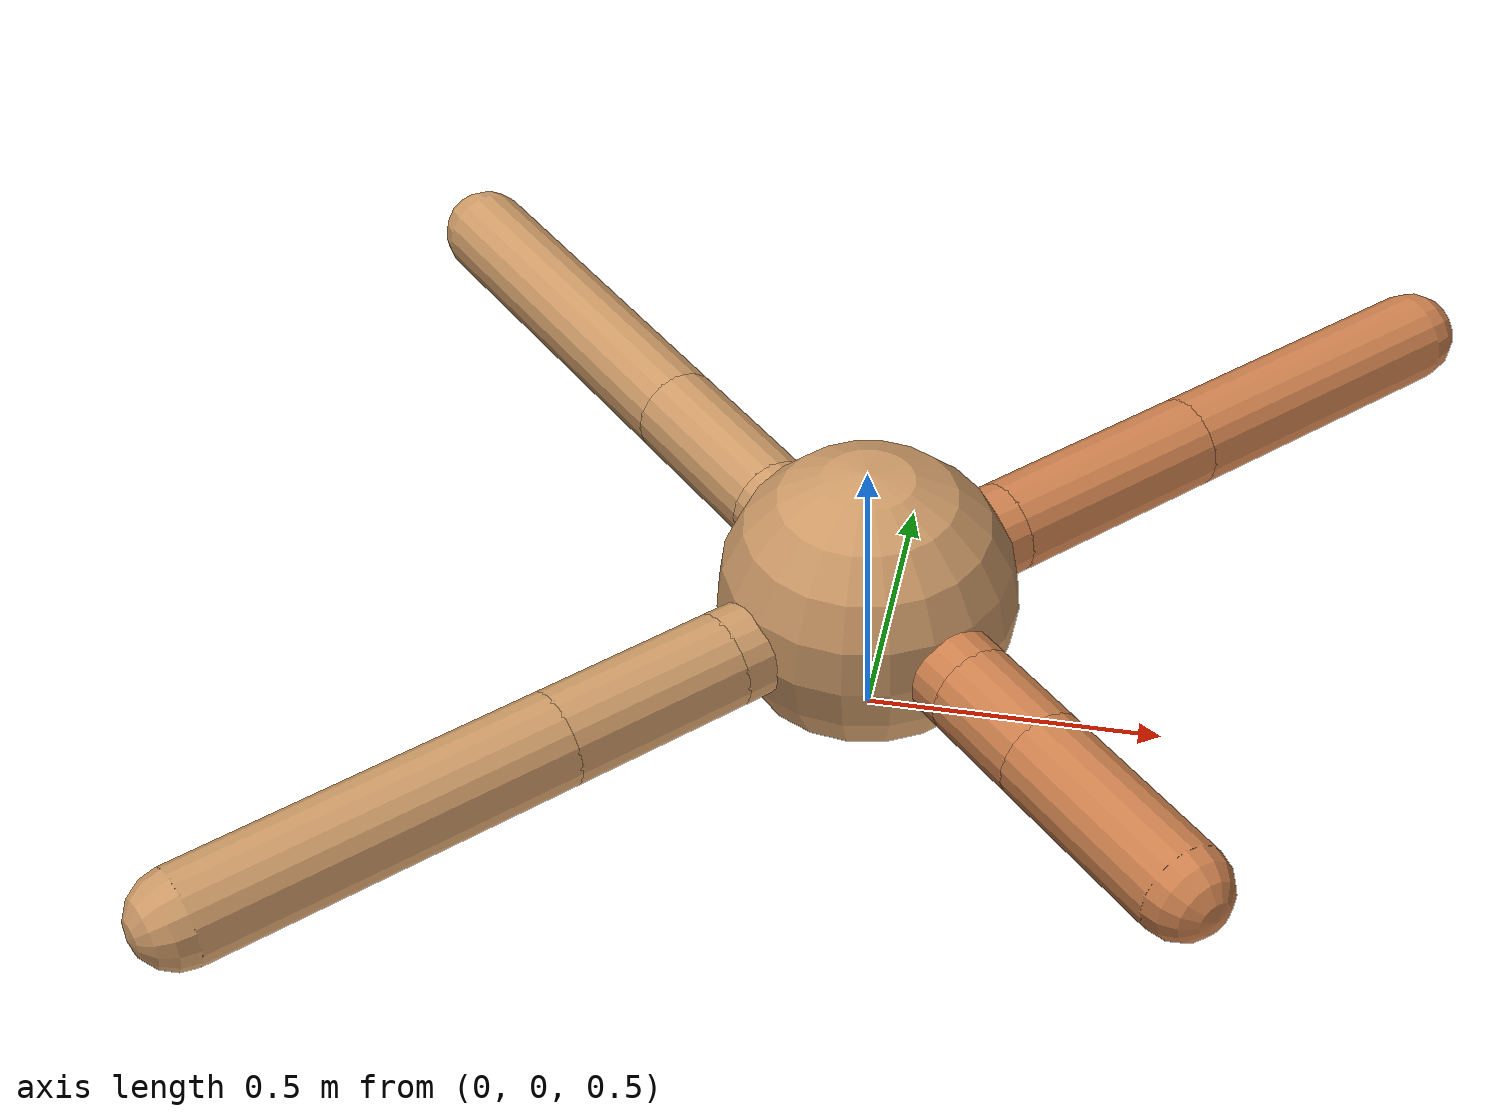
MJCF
<mujoco model="ant">
  <compiler angle="degree" coordinate="local" inertiafromgeom="true" />
  <option integrator="RK4" timestep="0.01" />
  <custom>
    <numeric data="0.0 0.0 0.55 1.0 0.0 0.0 0.0 0.0 1.0 0.0 -1.0 0.0 -1.0 0.0 1.0" name="init_qpos" />
  </custom>
  <default>
    <joint armature="1" damping="1" limited="true" />
    <geom conaffinity="0" condim="3" density="5.0" friction="1.5 0.1 0.1" margin="0.01" rgba="0.8 0.6 0.4 1" />
  </default>
  <worldbody>
    <body name="torso" pos="0 0 0.75">
      <geom name="torso_geom" pos="0 0 0" size="0.25" type="sphere" />

      <body name="front_left_leg" pos="0 0 0">
        <geom fromto="0.0 0.0 0.0 0.2 0.2 0.0" name="aux_1_geom" size="0.08" type="capsule" rgba=".8 .5 .3 1" />
        <body name="aux_1" pos="0.2 0.2 0.0">
          <joint axis="0 0 1" name="hip_1" pos="0.0 0.0 0.0" range="-40 40" type="hinge" />
          <geom fromto="0.0 0.0 0.0 0.28202005290865445 0.28202005290865445 0.0" name="left_leg_geom" size="0.08" type="capsule" rgba=".8 .5 .3 1" />
          <body pos="0.28202005290865445 0.28202005290865445 0.0" name="front_left_foot">
            <joint axis="-1 1 0" name="ankle_1" pos="0.0 0.0 0.0" range="30 100" type="hinge" />
            <geom fromto="0.0 0.0 0.0 0.37817223389114296 0.37817223389114296 0.0" name="left_ankle_geom" size="0.08" type="capsule" rgba=".8 .5 .3 1" />
          </body>
        </body>
      </body>
      <body name="front_right_leg" pos="0 0 0">
        <geom fromto="0.0 0.0 0.0 -0.2 0.2 0.0" name="aux_2_geom" size="0.08" type="capsule" />
        <body name="aux_2" pos="-0.2 0.2 0.0">
          <joint axis="0 0 1" name="hip_2" pos="0.0 0.0 0.0" range="-40 40" type="hinge" />
          <geom fromto="0.0 0.0 0.0 -0.2123089332460628 0.2123089332460628 0.0" name="right_leg_geom" size="0.08" type="capsule" />
          <body pos="-0.2123089332460628 0.2123089332460628 0.0" name="front_right_foot">
            <joint axis="1 1 0" name="ankle_2" pos="0.0 0.0 0.0" range="-100 -30" type="hinge" />
            <geom fromto="0.0 0.0 0.0 -0.4871189738307634 0.4871189738307634 0.0" name="right_ankle_geom" size="0.08" type="capsule" />
          </body>
        </body>
      </body>
      <body name="left_back_leg" pos="0 0 0">
        <geom fromto="0.0 0.0 0.0 -0.2 -0.2 0.0" name="aux_3_geom" size="0.08" type="capsule" />
        <body name="aux_3" pos="-0.2 -0.2 0.0">
          <joint axis="0 0 1" name="hip_3" pos="0.0 0.0 0.0" range="-40 40" type="hinge" />
          <geom fromto="0.0 0.0 0.0 -0.21733548614459985 -0.21733548614459985 0.0" name="back_leg_geom" size="0.08" type="capsule" />
          <body pos="-0.21733548614459985 -0.21733548614459985 0.0" name="left_back_foot">
            <joint axis="-1 1 0" name="ankle_3" pos="0.0 0.0 0.0" range="-100 -30" type="hinge" />
            <geom fromto="0.0 0.0 0.0 -0.44757043476129427 -0.44757043476129427 0.0" name="third_ankle_geom" size="0.08" type="capsule" />
          </body>
        </body>
      </body>
      <body name="right_back_leg" pos="0 0 0">
        <geom fromto="0.0 0.0 0.0 0.20337178696405567 -0.20337178696405567 0.0" name="aux_4_geom" size="0.08" type="capsule" rgba=".8 .5 .3 1" />
        <body name="aux_4" pos="0.20337178696405567 -0.20337178696405567 0.0">
          <joint axis="0 0 1" name="hip_4" pos="0.0 0.0 0.0" range="-40 40" type="hinge" />
          <geom fromto="0.0 0.0 0.0 0.12262310575084856 -0.12262310575084856 0.0" name="rightback_leg_geom" size="0.08" type="capsule" rgba=".8 .5 .3 1" />
          <body pos="0.12262310575084856 -0.12262310575084856 0.0" name="right_back_foot">
            <joint axis="1 1 0" name="ankle_4" pos="0.0 0.0 0.0" range="30 100" type="hinge" />
            <geom fromto="0.0 0.0 0.0 0.2374317637706637 -0.2374317637706637 0.0" name="fourth_ankle_geom" size="0.08" type="capsule" rgba=".8 .5 .3 1" />
          </body>
        </body>
      </body>
    </body>
  </worldbody>
  <actuator>
    <motor ctrllimited="true" ctrlrange="-1.0 1.0" joint="hip_4" gear="150" />
    <motor ctrllimited="true" ctrlrange="-1.0 1.0" joint="ankle_4" gear="150" />
    <motor ctrllimited="true" ctrlrange="-1.0 1.0" joint="hip_1" gear="150" />
    <motor ctrllimited="true" ctrlrange="-1.0 1.0" joint="ankle_1" gear="150" />
    <motor ctrllimited="true" ctrlrange="-1.0 1.0" joint="hip_2" gear="150" />
    <motor ctrllimited="true" ctrlrange="-1.0 1.0" joint="ankle_2" gear="150" />
    <motor ctrllimited="true" ctrlrange="-1.0 1.0" joint="hip_3" gear="150" />
    <motor ctrllimited="true" ctrlrange="-1.0 1.0" joint="ankle_3" gear="150" />
  </actuator>
</mujoco>
